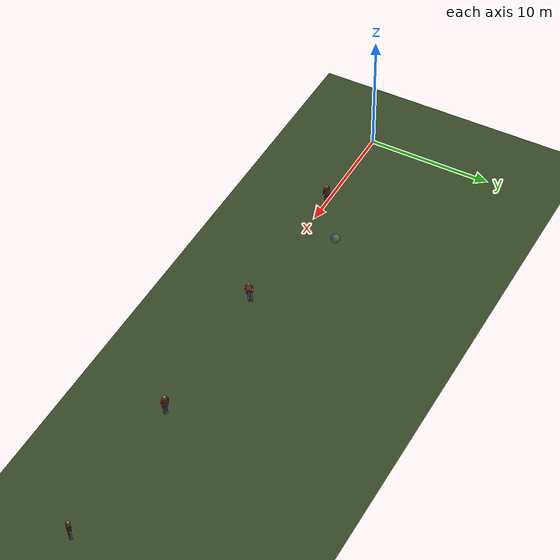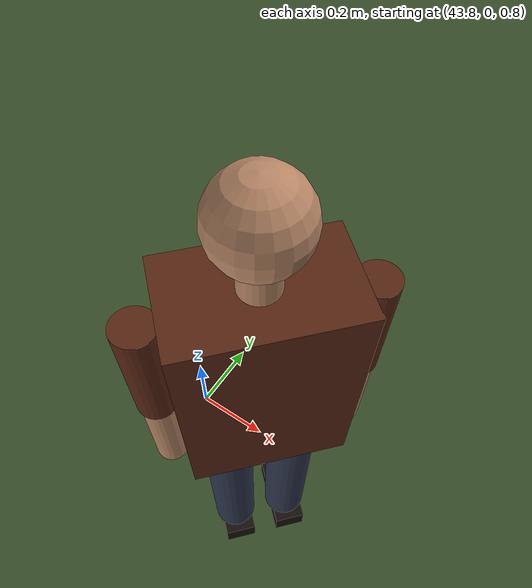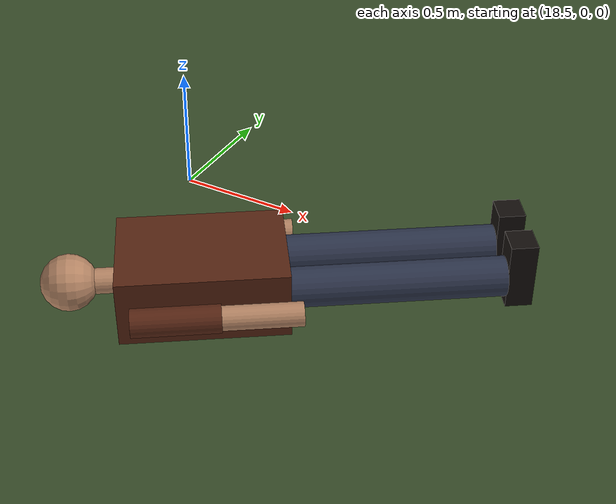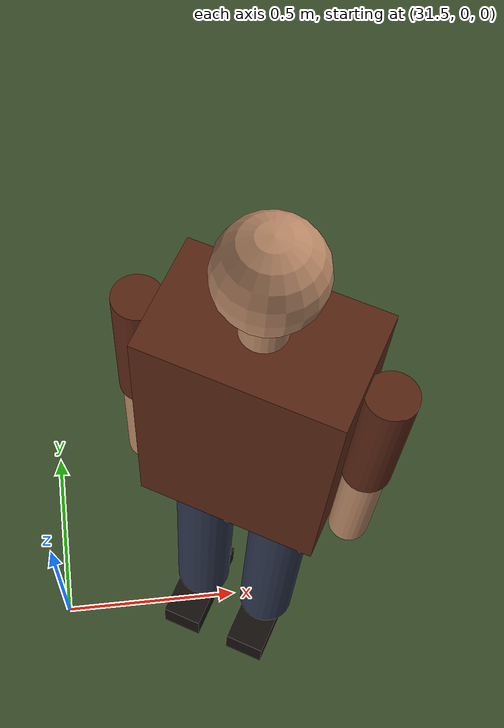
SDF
<sdf version="1.9">
 <world name="thermal_sar">
  <physics type="ode">
   <max_step_size>0.004</max_step_size>
   <real_time_factor>1.0</real_time_factor>
   <real_time_update_rate>250</real_time_update_rate>
  </physics>
  <gravity>0 0 -9.8</gravity>
  <magnetic_field>6e-06 2.3e-05 -4.2e-05</magnetic_field>
  <atmosphere type="adiabatic">
   <temperature>283.15</temperature>
   <temperature_gradient>0</temperature_gradient>
  </atmosphere>
  <scene>
   <grid>false</grid>
   <ambient>0.35 0.38 0.42 1</ambient>
   <background>0.55 0.62 0.72 1</background>
   <shadows>true</shadows>
  </scene>
  <light type="directional" name="sun">
   <pose>0 0 12 0 0 0</pose>
   <diffuse>0.9 0.82 0.7 1</diffuse>
   <specular>0.15 0.15 0.15 1</specular>
   <attenuation>
    <range>2000</range>
    <constant>0.9</constant>
    <linear>0.01</linear>
    <quadratic>0.001</quadratic>
   </attenuation>
   <direction>-0.7 0.35 -0.4</direction>
  </light>
  <model name="ground_plane">
   <static>true</static>
   <link name="link">
    <collision name="collision">
     <geometry><plane><normal>0 0 1</normal><size>200 200</size></plane></geometry>
     <surface><friction><ode><mu>1</mu><mu2>1</mu2></ode></friction></surface>
    </collision>
    <visual name="visual">
     <geometry><plane><normal>0 0 1</normal><size>200 200</size></plane></geometry>
     <material>
      <ambient>0.16 0.22 0.12 1</ambient>
      <diffuse>0.22 0.30 0.16 1</diffuse>
      <specular>0.02 0.02 0.02 1</specular>
     </material>
    </visual>
   </link>
  </model>
  <include><uri>model://thermal_person</uri><name>P1_open_standing</name><pose>8 0 0 0 0 1.2</pose></include>
  <include>
   <uri>model://thermal_person</uri>
   <name>P2_edge_supine</name>
   <pose>20 0 0.13 0 -1.5708 0.6</pose>
  </include>
  <include>
   <uri>model://thermal_person</uri>
   <name>P3_under_oak_standing</name>
   <pose>32 0 0 0 0 -2.1</pose>
  </include>
  <include><uri>model://thermal_person</uri><name>P4_dense_standing</name><pose>44 0 0 0 0 2.4</pose></include>
  <model name="warm_boulder">
   <static>true</static>
   <pose>11.5 2.6 0.35 0 0 0</pose>
   <link name="link">
    <collision name="collision"><geometry><sphere><radius>0.35</radius></sphere></geometry></collision>
    <visual name="visual">
     <geometry><sphere><radius>0.35</radius></sphere></geometry>
     <material><ambient>0.28 0.27 0.25 1</ambient><diffuse>0.38 0.37 0.35 1</diffuse></material>
     <plugin filename="gz-sim-thermal-system" name="gz::sim::systems::Thermal">
      <temperature>290.41</temperature>
     </plugin>
    </visual>
   </link>
  </model>
  <spherical_coordinates>
   <surface_model>EARTH_WGS84</surface_model>
   <world_frame_orientation>ENU</world_frame_orientation>
   <latitude_deg>47.397971057728974</latitude_deg>
   <longitude_deg>8.546163739800146</longitude_deg>
   <elevation>0</elevation>
  </spherical_coordinates>
 </world>
</sdf>

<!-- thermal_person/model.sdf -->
<sdf version='1.9'>
  <model name='thermal_person'>
    <static>true</static>
    <pose>0 0 0 0 0 0</pose>

    <link name="body">
      <!-- One collision box for the whole torso+legs volume. Enough to stop a vehicle
           flying through the target; the limbs are visual-only. -->
      <collision name="collision">
        <pose>0 0 0.85 0 0 0</pose>
        <geometry>
          <box><size>0.30 0.50 1.70</size></box>
        </geometry>
      </collision>

      <!-- ===== BOOTS: 287.84 K, poorly perfused and in contact with cold ground ===== -->
      <visual name="boot_left">
        <pose>0.03 0.10 0.05 0 0 0</pose>
        <geometry><box><size>0.26 0.11 0.10</size></box></geometry>
        <material>
          <ambient>0.05 0.04 0.03 1</ambient>
          <diffuse>0.08 0.06 0.05 1</diffuse>
        </material>
        <plugin filename="gz-sim-thermal-system" name="gz::sim::systems::Thermal">
          <temperature>287.84</temperature>
        </plugin>
      </visual>
      <visual name="boot_right">
        <pose>0.03 -0.10 0.05 0 0 0</pose>
        <geometry><box><size>0.26 0.11 0.10</size></box></geometry>
        <material>
          <ambient>0.05 0.04 0.03 1</ambient>
          <diffuse>0.08 0.06 0.05 1</diffuse>
        </material>
        <plugin filename="gz-sim-thermal-system" name="gz::sim::systems::Thermal">
          <temperature>287.84</temperature>
        </plugin>
      </visual>

      <!-- ===== LEGS: 292.98 K, trouser surface ===== -->
      <visual name="leg_left">
        <pose>0 0.10 0.50 0 0 0</pose>
        <geometry><cylinder><radius>0.075</radius><length>0.80</length></cylinder></geometry>
        <material>
          <ambient>0.12 0.14 0.20 1</ambient>
          <diffuse>0.18 0.21 0.30 1</diffuse>
        </material>
        <plugin filename="gz-sim-thermal-system" name="gz::sim::systems::Thermal">
          <temperature>292.98</temperature>
        </plugin>
      </visual>
      <visual name="leg_right">
        <pose>0 -0.10 0.50 0 0 0</pose>
        <geometry><cylinder><radius>0.075</radius><length>0.80</length></cylinder></geometry>
        <material>
          <ambient>0.12 0.14 0.20 1</ambient>
          <diffuse>0.18 0.21 0.30 1</diffuse>
        </material>
        <plugin filename="gz-sim-thermal-system" name="gz::sim::systems::Thermal">
          <temperature>292.98</temperature>
        </plugin>
      </visual>

      <!-- ===== TORSO + UPPER ARMS: 298.12 K, jacket surface ===== -->
      <visual name="torso">
        <pose>0 0 1.20 0 0 0</pose>
        <geometry><box><size>0.26 0.42 0.62</size></box></geometry>
        <material>
          <ambient>0.20 0.09 0.05 1</ambient>
          <diffuse>0.35 0.15 0.08 1</diffuse>
        </material>
        <plugin filename="gz-sim-thermal-system" name="gz::sim::systems::Thermal">
          <temperature>298.12</temperature>
        </plugin>
      </visual>
      <visual name="upper_arm_left">
        <pose>0 0.255 1.30 0 0 0</pose>
        <geometry><cylinder><radius>0.052</radius><length>0.32</length></cylinder></geometry>
        <material>
          <ambient>0.20 0.09 0.05 1</ambient>
          <diffuse>0.35 0.15 0.08 1</diffuse>
        </material>
        <plugin filename="gz-sim-thermal-system" name="gz::sim::systems::Thermal">
          <temperature>298.12</temperature>
        </plugin>
      </visual>
      <visual name="upper_arm_right">
        <pose>0 -0.255 1.30 0 0 0</pose>
        <geometry><cylinder><radius>0.052</radius><length>0.32</length></cylinder></geometry>
        <material>
          <ambient>0.20 0.09 0.05 1</ambient>
          <diffuse>0.35 0.15 0.08 1</diffuse>
        </material>
        <plugin filename="gz-sim-thermal-system" name="gz::sim::systems::Thermal">
          <temperature>298.12</temperature>
        </plugin>
      </visual>

      <!-- ===== FOREARMS + HANDS: 303.26 K, bare skin ===== -->
      <visual name="forearm_left">
        <pose>0 0.255 1.00 0 0 0</pose>
        <geometry><cylinder><radius>0.045</radius><length>0.30</length></cylinder></geometry>
        <material>
          <ambient>0.45 0.32 0.24 1</ambient>
          <diffuse>0.72 0.53 0.40 1</diffuse>
        </material>
        <plugin filename="gz-sim-thermal-system" name="gz::sim::systems::Thermal">
          <temperature>303.26</temperature>
        </plugin>
      </visual>
      <visual name="forearm_right">
        <pose>0 -0.255 1.00 0 0 0</pose>
        <geometry><cylinder><radius>0.045</radius><length>0.30</length></cylinder></geometry>
        <material>
          <ambient>0.45 0.32 0.24 1</ambient>
          <diffuse>0.72 0.53 0.40 1</diffuse>
        </material>
        <plugin filename="gz-sim-thermal-system" name="gz::sim::systems::Thermal">
          <temperature>303.26</temperature>
        </plugin>
      </visual>

      <visual name="neck">
        <pose>0 0 1.55 0 0 0</pose>
        <geometry><cylinder><radius>0.048</radius><length>0.08</length></cylinder></geometry>
        <material>
          <ambient>0.45 0.32 0.24 1</ambient>
          <diffuse>0.72 0.53 0.40 1</diffuse>
        </material>
        <plugin filename="gz-sim-thermal-system" name="gz::sim::systems::Thermal">
          <temperature>308.40</temperature>
        </plugin>
      </visual>
      <visual name="head">
        <pose>0 0 1.685 0 0 0</pose>
        <geometry><sphere><radius>0.105</radius></sphere></geometry>
        <material>
          <ambient>0.45 0.32 0.24 1</ambient>
          <diffuse>0.72 0.53 0.40 1</diffuse>
        </material>
        <plugin filename="gz-sim-thermal-system" name="gz::sim::systems::Thermal">
          <temperature>308.40</temperature>
        </plugin>
      </visual>
    </link>

  </model>
</sdf>
